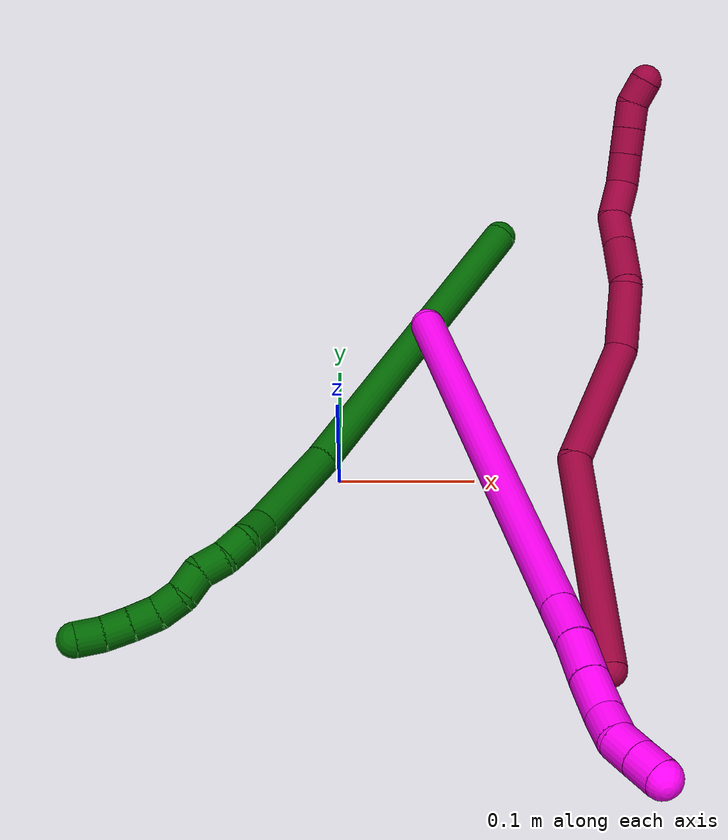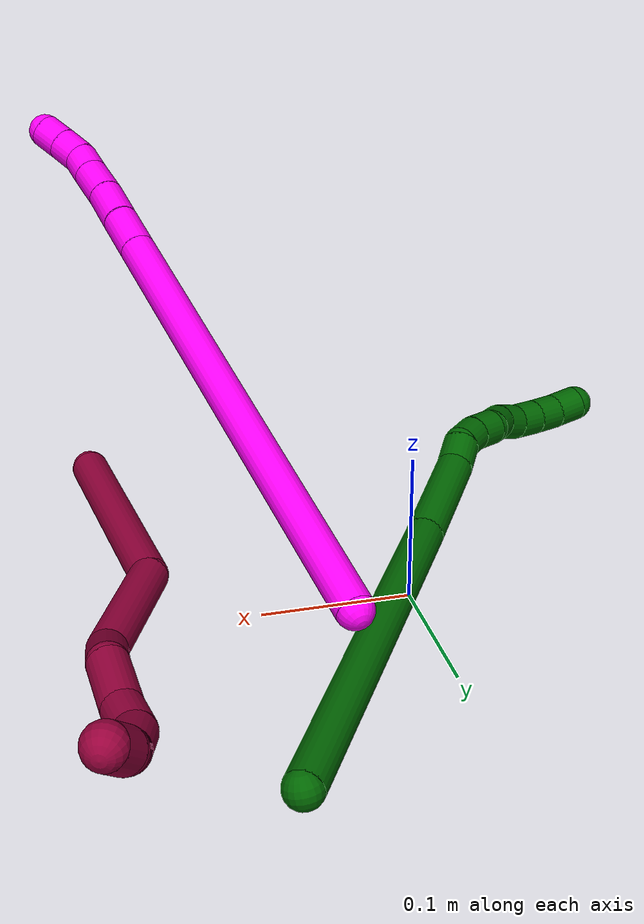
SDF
<sdf version="1.7">
 <world name="default">
  <model name="photoneo_s_sensor">
   <static>1</static>
   <pose>0 0 2 1.57079 1.57079 3.14159</pose>
   <link name="link">
    <inertial><mass>0.1</mass></inertial>
    <sensor name="sensor" type="depth">
     <update_rate>30</update_rate>
     <camera>
      <horizontal_fov>1.22</horizontal_fov>
      <image><width>1920</width><height>1200</height><format>B8G8R8</format></image>
      <clip><near>0.1</near><far>4</far></clip>
      <depth_camera><output>points</output></depth_camera>
     </camera>
     <plugin name="camera_plugin" filename="libgazebo_ros_depth_camera.so">
      <baseline>0.2</baseline>
      <alwaysOn>1</alwaysOn>
      <updateRate>0.0</updateRate>
      <cameraName>camera_ir</cameraName>
      <imageTopicName>/camera/color/image_raw</imageTopicName>
      <cameraInfoTopicName>/camera/color/camera_info</cameraInfoTopicName>
      <depthImageTopicName>/camera/depth/image_raw</depthImageTopicName>
      <depthImageCameraInfoTopicName>/camera/depth/camera_info</depthImageCameraInfoTopicName>
      <pointCloudTopicName>/camera/depth/points</pointCloudTopicName>
      <frameName>fr_optical</frameName>
      <pointCloudCutoff>0.1</pointCloudCutoff>
      <pointCloudCutoffMax>2.0</pointCloudCutoffMax>
      <distortionK1>0</distortionK1>
      <distortionK2>0</distortionK2>
      <distortionK3>0</distortionK3>
      <distortionT1>0</distortionT1>
      <distortionT2>0</distortionT2>
      <CxPrime>0</CxPrime>
      <Cx>0</Cx>
      <Cy>0</Cy>
      <focalLength>0</focalLength>
      <hackBaseline>0</hackBaseline>
     </plugin>
    </sensor>
   </link>
  </model>
  <model name="bin">
   <static>1</static>
   <link name="bottom">
    <collision name="collision-bottom">
     <pose>0 0 -0.01 0 -0 0</pose>
     <geometry><box><size>0.8 0.6 0.02</size></box></geometry>
     <surface>
      <friction><ode><mu>100</mu><mu2>100</mu2></ode></friction>
      <contact><collide_bitmask>65535</collide_bitmask></contact>
     </surface>
    </collision>
   </link>
   <link name="west_wall">
    <collision name="collision-west_wall">
     <pose>-0.41 0 0.1 0 -0 0</pose>
     <geometry><box><size>0.02 0.6 0.2</size></box></geometry>
     <surface>
      <friction><ode><mu>100</mu><mu2>100</mu2></ode></friction>
      <contact><collide_bitmask>65535</collide_bitmask></contact>
     </surface>
    </collision>
   </link>
   <link name="east_wall">
    <collision name="collision-east_wall">
     <pose>0.41 0 0.1 0 -0 0</pose>
     <geometry><box><size>0.02 0.6 0.2</size></box></geometry>
     <surface>
      <friction><ode><mu>100</mu><mu2>100</mu2></ode></friction>
      <contact><collide_bitmask>65535</collide_bitmask></contact>
     </surface>
    </collision>
   </link>
   <link name="south_wall">
    <collision name="collision-south_wall">
     <pose>0 -0.31 0.1 0 -0 0</pose>
     <geometry><box><size>0.8 0.02 0.2</size></box></geometry>
     <surface>
      <friction><ode><mu>100</mu><mu2>100</mu2></ode></friction>
      <contact><collide_bitmask>65535</collide_bitmask></contact>
     </surface>
    </collision>
   </link>
   <link name="north_wall">
    <collision name="collision-north_wall">
     <pose>0 0.31 0.1 0 -0 0</pose>
     <geometry><box><size>0.8 0.02 0.2</size></box></geometry>
     <surface>
      <friction><ode><mu>100</mu><mu2>100</mu2></ode></friction>
      <contact><collide_bitmask>65535</collide_bitmask></contact>
     </surface>
    </collision>
   </link>
  </model>
  <model name="6">
   <static>0</static>
   <link name="6">
    <collision name="collision-cylinder-e_1_1_4">
     <pose>0.036517 -0.123294 -0.024096 1.7638 0.282886 0.342447</pose>
     <geometry><cylinder><radius>0.0125</radius><length>0.261652</length></cylinder></geometry>
     <surface>
      <friction><ode><mu>1.16</mu><mu2>1.16</mu2><slip1>0</slip1><slip2>0</slip2></ode></friction>
      <contact><ode><kp>1e+06</kp><kd>1</kd><max_vel>0</max_vel><min_depth>0.001</min_depth></ode></contact>
     </surface>
    </collision>
    <visual name="visual-cylinder-e_1_1_4">
     <pose>0.036517 -0.123294 -0.024096 1.7638 0.282886 0.342447</pose>
     <geometry><cylinder><radius>0.0125</radius><length>0.261652</length></cylinder></geometry>
     <material><ambient>0 0.392157 0.003922 1</ambient></material>
    </visual>
    <collision name="collision-cylinder-e_2_4_5">
     <pose>0.085202 -0.28099 -0.059039 1.87622 0.325327 0.440383</pose>
     <geometry><cylinder><radius>0.0125</radius><length>0.076137</length></cylinder></geometry>
     <surface>
      <friction><ode><mu>1.16</mu><mu2>1.16</mu2><slip1>0</slip1><slip2>0</slip2></ode></friction>
      <contact><ode><kp>1e+06</kp><kd>1</kd><max_vel>0</max_vel><min_depth>0.001</min_depth></ode></contact>
     </surface>
    </collision>
    <visual name="visual-cylinder-e_2_4_5">
     <pose>0.085202 -0.28099 -0.059039 1.87622 0.325327 0.440383</pose>
     <geometry><cylinder><radius>0.0125</radius><length>0.076137</length></cylinder></geometry>
     <material><ambient>0 0.392157 0.003922 1</ambient></material>
    </visual>
    <collision name="collision-cylinder-e_3_5_6">
     <pose>0.100858 -0.324424 -0.075271 2.10844 0.320329 0.554178</pose>
     <geometry><cylinder><radius>0.0125</radius><length>0.022158</length></cylinder></geometry>
     <surface>
      <friction><ode><mu>1.16</mu><mu2>1.16</mu2><slip1>0</slip1><slip2>0</slip2></ode></friction>
      <contact><ode><kp>1e+06</kp><kd>1</kd><max_vel>0</max_vel><min_depth>0.001</min_depth></ode></contact>
     </surface>
    </collision>
    <visual name="visual-cylinder-e_3_5_6">
     <pose>0.100858 -0.324424 -0.075271 2.10844 0.320329 0.554178</pose>
     <geometry><cylinder><radius>0.0125</radius><length>0.022158</length></cylinder></geometry>
     <material><ambient>0 0.392157 0.003922 1</ambient></material>
    </visual>
    <collision name="collision-cylinder-e_4_6_7">
     <pose>0.108944 -0.342338 -0.081279 1.64082 0.476595 0.509762</pose>
     <geometry><cylinder><radius>0.0125</radius><length>0.020041</length></cylinder></geometry>
     <surface>
      <friction><ode><mu>1.16</mu><mu2>1.16</mu2><slip1>0</slip1><slip2>0</slip2></ode></friction>
      <contact><ode><kp>1e+06</kp><kd>1</kd><max_vel>0</max_vel><min_depth>0.001</min_depth></ode></contact>
     </surface>
    </collision>
    <visual name="visual-cylinder-e_4_6_7">
     <pose>0.108944 -0.342338 -0.081279 1.64082 0.476595 0.509762</pose>
     <geometry><cylinder><radius>0.0125</radius><length>0.020041</length></cylinder></geometry>
     <material><ambient>0 0.392157 0.003922 1</ambient></material>
    </visual>
    <collision name="collision-cylinder-e_5_7_8">
     <pose>0.120019 -0.358804 -0.08116 1.47326 0.704614 0.643673</pose>
     <geometry><cylinder><radius>0.0125</radius><length>0.020004</length></cylinder></geometry>
     <surface>
      <friction><ode><mu>1.16</mu><mu2>1.16</mu2><slip1>0</slip1><slip2>0</slip2></ode></friction>
      <contact><ode><kp>1e+06</kp><kd>1</kd><max_vel>0</max_vel><min_depth>0.001</min_depth></ode></contact>
     </surface>
    </collision>
    <visual name="visual-cylinder-e_5_7_8">
     <pose>0.120019 -0.358804 -0.08116 1.47326 0.704614 0.643673</pose>
     <geometry><cylinder><radius>0.0125</radius><length>0.020004</length></cylinder></geometry>
     <material><ambient>0 0.392157 0.003922 1</ambient></material>
    </visual>
    <collision name="collision-cylinder-e_6_8_9">
     <pose>0.129218 -0.375948 -0.079304 1.45487 0.275452 0.245559</pose>
     <geometry><cylinder><radius>0.0125</radius><length>0.020003</length></cylinder></geometry>
     <surface>
      <friction><ode><mu>1.16</mu><mu2>1.16</mu2><slip1>0</slip1><slip2>0</slip2></ode></friction>
      <contact><ode><kp>1e+06</kp><kd>1</kd><max_vel>0</max_vel><min_depth>0.001</min_depth></ode></contact>
     </surface>
    </collision>
    <visual name="visual-cylinder-e_6_8_9">
     <pose>0.129218 -0.375948 -0.079304 1.45487 0.275452 0.245559</pose>
     <geometry><cylinder><radius>0.0125</radius><length>0.020003</length></cylinder></geometry>
     <material><ambient>0 0.392157 0.003922 1</ambient></material>
    </visual>
    <collision name="collision-cylinder-e_7_9_10">
     <pose>0.137609 -0.393163 -0.07515 1.19259 0.602894 0.415951</pose>
     <geometry><cylinder><radius>0.0125</radius><length>0.020001</length></cylinder></geometry>
     <surface>
      <friction><ode><mu>1.16</mu><mu2>1.16</mu2><slip1>0</slip1><slip2>0</slip2></ode></friction>
      <contact><ode><kp>1e+06</kp><kd>1</kd><max_vel>0</max_vel><min_depth>0.001</min_depth></ode></contact>
     </surface>
    </collision>
    <visual name="visual-cylinder-e_7_9_10">
     <pose>0.137609 -0.393163 -0.07515 1.19259 0.602894 0.415951</pose>
     <geometry><cylinder><radius>0.0125</radius><length>0.020001</length></cylinder></geometry>
     <material><ambient>0 0.392157 0.003922 1</ambient></material>
    </visual>
    <collision name="collision-cylinder-e_8_10_11">
     <pose>0.150633 -0.407489 -0.070906 1.39252 0.826062 0.702298</pose>
     <geometry><cylinder><radius>0.0125</radius><length>0.020002</length></cylinder></geometry>
     <surface>
      <friction><ode><mu>1.16</mu><mu2>1.16</mu2><slip1>0</slip1><slip2>0</slip2></ode></friction>
      <contact><ode><kp>1e+06</kp><kd>1</kd><max_vel>0</max_vel><min_depth>0.001</min_depth></ode></contact>
     </surface>
    </collision>
    <visual name="visual-cylinder-e_8_10_11">
     <pose>0.150633 -0.407489 -0.070906 1.39252 0.826062 0.702298</pose>
     <geometry><cylinder><radius>0.0125</radius><length>0.020002</length></cylinder></geometry>
     <material><ambient>0 0.392157 0.003922 1</ambient></material>
    </visual>
    <collision name="collision-cylinder-e_9_11_12">
     <pose>0.165705 -0.420474 -0.068957 1.45311 0.881735 0.79413</pose>
     <geometry><cylinder><radius>0.0125</radius><length>0.020001</length></cylinder></geometry>
     <surface>
      <friction><ode><mu>1.16</mu><mu2>1.16</mu2><slip1>0</slip1><slip2>0</slip2></ode></friction>
      <contact><ode><kp>1e+06</kp><kd>1</kd><max_vel>0</max_vel><min_depth>0.001</min_depth></ode></contact>
     </surface>
    </collision>
    <visual name="visual-cylinder-e_9_11_12">
     <pose>0.165705 -0.420474 -0.068957 1.45311 0.881735 0.79413</pose>
     <geometry><cylinder><radius>0.0125</radius><length>0.020001</length></cylinder></geometry>
     <material><ambient>0 0.392157 0.003922 1</ambient></material>
    </visual>
    <collision name="collision-cylinder-e_10_12_2">
     <pose>0.18186 -0.432144 -0.068598 1.64294 1.00402 1.06608</pose>
     <geometry><cylinder><radius>0.0125</radius><length>0.020001</length></cylinder></geometry>
     <surface>
      <friction><ode><mu>1.16</mu><mu2>1.16</mu2><slip1>0</slip1><slip2>0</slip2></ode></friction>
      <contact><ode><kp>1e+06</kp><kd>1</kd><max_vel>0</max_vel><min_depth>0.001</min_depth></ode></contact>
     </surface>
    </collision>
    <visual name="visual-cylinder-e_10_12_2">
     <pose>0.18186 -0.432144 -0.068598 1.64294 1.00402 1.06608</pose>
     <geometry><cylinder><radius>0.0125</radius><length>0.020001</length></cylinder></geometry>
     <material><ambient>0 0.392157 0.003922 1</ambient></material>
    </visual>
    <collision name="collision-sphere-2">
     <pose>0.190297 -0.4375 -0.068985 0 -0 0</pose>
     <geometry><sphere><radius>0.0125</radius></sphere></geometry>
     <surface>
      <friction><ode><mu>1.16</mu><mu2>1.16</mu2><slip1>0</slip1><slip2>0</slip2></ode></friction>
      <contact><ode><kp>1e+06</kp><kd>1</kd><max_vel>0</max_vel><min_depth>0.001</min_depth></ode></contact>
     </surface>
    </collision>
    <visual name="visual-sphere-2">
     <pose>0.190297 -0.4375 -0.068985 0 -0 0</pose>
     <geometry><sphere><radius>0.0125</radius></sphere></geometry>
     <material><ambient>0 0.392157 0.003922 1</ambient></material>
    </visual>
    <collision name="collision-sphere-12">
     <pose>0.173424 -0.426789 -0.068211 0 -0 0</pose>
     <geometry><sphere><radius>0.0125</radius></sphere></geometry>
     <surface>
      <friction><ode><mu>1.16</mu><mu2>1.16</mu2><slip1>0</slip1><slip2>0</slip2></ode></friction>
      <contact><ode><kp>1e+06</kp><kd>1</kd><max_vel>0</max_vel><min_depth>0.001</min_depth></ode></contact>
     </surface>
    </collision>
    <visual name="visual-sphere-12">
     <pose>0.173424 -0.426789 -0.068211 0 -0 0</pose>
     <geometry><sphere><radius>0.0125</radius></sphere></geometry>
     <material><ambient>0 0.392157 0.003922 1</ambient></material>
    </visual>
    <collision name="collision-sphere-11">
     <pose>0.157986 -0.41416 -0.069704 0 -0 0</pose>
     <geometry><sphere><radius>0.0125</radius></sphere></geometry>
     <surface>
      <friction><ode><mu>1.16</mu><mu2>1.16</mu2><slip1>0</slip1><slip2>0</slip2></ode></friction>
      <contact><ode><kp>1e+06</kp><kd>1</kd><max_vel>0</max_vel><min_depth>0.001</min_depth></ode></contact>
     </surface>
    </collision>
    <visual name="visual-sphere-11">
     <pose>0.157986 -0.41416 -0.069704 0 -0 0</pose>
     <geometry><sphere><radius>0.0125</radius></sphere></geometry>
     <material><ambient>0 0.392157 0.003922 1</ambient></material>
    </visual>
    <collision name="collision-sphere-10">
     <pose>0.143279 -0.400818 -0.072108 0 -0 0</pose>
     <geometry><sphere><radius>0.0125</radius></sphere></geometry>
     <surface>
      <friction><ode><mu>1.16</mu><mu2>1.16</mu2><slip1>0</slip1><slip2>0</slip2></ode></friction>
      <contact><ode><kp>1e+06</kp><kd>1</kd><max_vel>0</max_vel><min_depth>0.001</min_depth></ode></contact>
     </surface>
    </collision>
    <visual name="visual-sphere-10">
     <pose>0.143279 -0.400818 -0.072108 0 -0 0</pose>
     <geometry><sphere><radius>0.0125</radius></sphere></geometry>
     <material><ambient>0 0.392157 0.003922 1</ambient></material>
    </visual>
    <collision name="collision-sphere-9">
     <pose>0.131939 -0.385508 -0.078191 0 -0 0</pose>
     <geometry><sphere><radius>0.0125</radius></sphere></geometry>
     <surface>
      <friction><ode><mu>1.16</mu><mu2>1.16</mu2><slip1>0</slip1><slip2>0</slip2></ode></friction>
      <contact><ode><kp>1e+06</kp><kd>1</kd><max_vel>0</max_vel><min_depth>0.001</min_depth></ode></contact>
     </surface>
    </collision>
    <visual name="visual-sphere-9">
     <pose>0.131939 -0.385508 -0.078191 0 -0 0</pose>
     <geometry><sphere><radius>0.0125</radius></sphere></geometry>
     <material><ambient>0 0.392157 0.003922 1</ambient></material>
    </visual>
    <collision name="collision-sphere-4">
     <pose>0.073035 -0.246588 -0.048192 0 -0 0</pose>
     <geometry><sphere><radius>0.0125</radius></sphere></geometry>
     <surface>
      <friction><ode><mu>1.16</mu><mu2>1.16</mu2><slip1>0</slip1><slip2>0</slip2></ode></friction>
      <contact><ode><kp>1e+06</kp><kd>1</kd><max_vel>0</max_vel><min_depth>0.001</min_depth></ode></contact>
     </surface>
    </collision>
    <visual name="visual-sphere-4">
     <pose>0.073035 -0.246588 -0.048192 0 -0 0</pose>
     <geometry><sphere><radius>0.0125</radius></sphere></geometry>
     <material><ambient>0 0.392157 0.003922 1</ambient></material>
    </visual>
    <collision name="collision-sphere-1">
     <geometry><sphere><radius>0.0125</radius></sphere></geometry>
     <surface>
      <friction><ode><mu>1.16</mu><mu2>1.16</mu2><slip1>0</slip1><slip2>0</slip2></ode></friction>
      <contact><ode><kp>1e+06</kp><kd>1</kd><max_vel>0</max_vel><min_depth>0.001</min_depth></ode></contact>
     </surface>
    </collision>
    <visual name="visual-sphere-1">
     <geometry><sphere><radius>0.0125</radius></sphere></geometry>
     <material><ambient>0 0.392157 0.003922 1</ambient></material>
    </visual>
    <collision name="collision-sphere-8">
     <pose>0.126498 -0.366388 -0.080418 0 -0 0</pose>
     <geometry><sphere><radius>0.0125</radius></sphere></geometry>
     <surface>
      <friction><ode><mu>1.16</mu><mu2>1.16</mu2><slip1>0</slip1><slip2>0</slip2></ode></friction>
      <contact><ode><kp>1e+06</kp><kd>1</kd><max_vel>0</max_vel><min_depth>0.001</min_depth></ode></contact>
     </surface>
    </collision>
    <visual name="visual-sphere-8">
     <pose>0.126498 -0.366388 -0.080418 0 -0 0</pose>
     <geometry><sphere><radius>0.0125</radius></sphere></geometry>
     <material><ambient>0 0.392157 0.003922 1</ambient></material>
    </visual>
    <collision name="collision-sphere-5">
     <pose>0.09737 -0.315392 -0.069885 0 -0 0</pose>
     <geometry><sphere><radius>0.0125</radius></sphere></geometry>
     <surface>
      <friction><ode><mu>1.16</mu><mu2>1.16</mu2><slip1>0</slip1><slip2>0</slip2></ode></friction>
      <contact><ode><kp>1e+06</kp><kd>1</kd><max_vel>0</max_vel><min_depth>0.001</min_depth></ode></contact>
     </surface>
    </collision>
    <visual name="visual-sphere-5">
     <pose>0.09737 -0.315392 -0.069885 0 -0 0</pose>
     <geometry><sphere><radius>0.0125</radius></sphere></geometry>
     <material><ambient>0 0.392157 0.003922 1</ambient></material>
    </visual>
    <collision name="collision-sphere-6">
     <pose>0.104347 -0.333456 -0.080656 0 -0 0</pose>
     <geometry><sphere><radius>0.0125</radius></sphere></geometry>
     <surface>
      <friction><ode><mu>1.16</mu><mu2>1.16</mu2><slip1>0</slip1><slip2>0</slip2></ode></friction>
      <contact><ode><kp>1e+06</kp><kd>1</kd><max_vel>0</max_vel><min_depth>0.001</min_depth></ode></contact>
     </surface>
    </collision>
    <visual name="visual-sphere-6">
     <pose>0.104347 -0.333456 -0.080656 0 -0 0</pose>
     <geometry><sphere><radius>0.0125</radius></sphere></geometry>
     <material><ambient>0 0.392157 0.003922 1</ambient></material>
    </visual>
    <collision name="collision-sphere-7">
     <pose>0.113541 -0.35122 -0.081902 0 -0 0</pose>
     <geometry><sphere><radius>0.0125</radius></sphere></geometry>
     <surface>
      <friction><ode><mu>1.16</mu><mu2>1.16</mu2><slip1>0</slip1><slip2>0</slip2></ode></friction>
      <contact><ode><kp>1e+06</kp><kd>1</kd><max_vel>0</max_vel><min_depth>0.001</min_depth></ode></contact>
     </surface>
    </collision>
    <visual name="visual-sphere-7">
     <pose>0.113541 -0.35122 -0.081902 0 -0 0</pose>
     <geometry><sphere><radius>0.0125</radius></sphere></geometry>
     <material><ambient>0 0.392157 0.003922 1</ambient></material>
    </visual>
    <inertial>
     <pose>0.076325 -0.230936 -0.045958 0 -0 0</pose>
     <mass>0.5</mass>
     <inertia>
      <ixx>0.001922</ixx>
      <ixy>0</ixy>
      <ixz>0</ixz>
      <iyy>0.000337</iyy>
      <iyz>0</iyz>
      <izz>0.001017</izz>
     </inertia>
    </inertial>
   </link>
   <pose>0.125695 0.214224 0.024928 2.95313 -0.203157 2.86117</pose>
  </model>
  <model name="8">
   <static>0</static>
   <link name="8">
    <collision name="collision-cylinder-e_1_1_4">
     <pose>-0.009068 0.036738 0.075959 -0.450486 -0.107059 0.024553</pose>
     <geometry><cylinder><radius>0.0125</radius><length>0.169725</length></cylinder></geometry>
     <surface>
      <friction><ode><mu>1.16</mu><mu2>1.16</mu2><slip1>0</slip1><slip2>0</slip2></ode></friction>
      <contact><ode><kp>1e+06</kp><kd>1</kd><max_vel>0</max_vel><min_depth>0.001</min_depth></ode></contact>
     </surface>
    </collision>
    <visual name="visual-cylinder-e_1_1_4">
     <pose>-0.009068 0.036738 0.075959 -0.450486 -0.107059 0.024553</pose>
     <geometry><cylinder><radius>0.0125</radius><length>0.169725</length></cylinder></geometry>
     <material><ambient>0.584314 0 0.227451 1</ambient></material>
    </visual>
    <collision name="collision-cylinder-e_2_4_5">
     <pose>-0.021338 0.071279 0.202289 0.043571 -0.063435 -0.001383</pose>
     <geometry><cylinder><radius>0.0125</radius><length>0.101042</length></cylinder></geometry>
     <surface>
      <friction><ode><mu>1.16</mu><mu2>1.16</mu2><slip1>0</slip1><slip2>0</slip2></ode></friction>
      <contact><ode><kp>1e+06</kp><kd>1</kd><max_vel>0</max_vel><min_depth>0.001</min_depth></ode></contact>
     </surface>
    </collision>
    <visual name="visual-cylinder-e_2_4_5">
     <pose>-0.021338 0.071279 0.202289 0.043571 -0.063435 -0.001383</pose>
     <geometry><cylinder><radius>0.0125</radius><length>0.101042</length></cylinder></geometry>
     <material><ambient>0.584314 0 0.227451 1</ambient></material>
    </visual>
    <collision name="collision-cylinder-e_3_5_6">
     <pose>-0.035425 0.072905 0.274917 -0.170056 -0.449112 0.038931</pose>
     <geometry><cylinder><radius>0.0125</radius><length>0.050136</length></cylinder></geometry>
     <surface>
      <friction><ode><mu>1.16</mu><mu2>1.16</mu2><slip1>0</slip1><slip2>0</slip2></ode></friction>
      <contact><ode><kp>1e+06</kp><kd>1</kd><max_vel>0</max_vel><min_depth>0.001</min_depth></ode></contact>
     </surface>
    </collision>
    <visual name="visual-cylinder-e_3_5_6">
     <pose>-0.035425 0.072905 0.274917 -0.170056 -0.449112 0.038931</pose>
     <geometry><cylinder><radius>0.0125</radius><length>0.050136</length></cylinder></geometry>
     <material><ambient>0.584314 0 0.227451 1</ambient></material>
    </visual>
    <collision name="collision-cylinder-e_4_6_7">
     <pose>-0.046146 0.085178 0.315476 -0.432605 0.00807 -0.001773</pose>
     <geometry><cylinder><radius>0.0125</radius><length>0.040321</length></cylinder></geometry>
     <surface>
      <friction><ode><mu>1.16</mu><mu2>1.16</mu2><slip1>0</slip1><slip2>0</slip2></ode></friction>
      <contact><ode><kp>1e+06</kp><kd>1</kd><max_vel>0</max_vel><min_depth>0.001</min_depth></ode></contact>
     </surface>
    </collision>
    <visual name="visual-cylinder-e_4_6_7">
     <pose>-0.046146 0.085178 0.315476 -0.432605 0.00807 -0.001773</pose>
     <geometry><cylinder><radius>0.0125</radius><length>0.040321</length></cylinder></geometry>
     <material><ambient>0.584314 0 0.227451 1</ambient></material>
    </visual>
    <collision name="collision-cylinder-e_5_7_8">
     <pose>-0.048472 0.099347 0.345661 -0.448441 -0.18654 0.042659</pose>
     <geometry><cylinder><radius>0.0125</radius><length>0.026837</length></cylinder></geometry>
     <surface>
      <friction><ode><mu>1.16</mu><mu2>1.16</mu2><slip1>0</slip1><slip2>0</slip2></ode></friction>
      <contact><ode><kp>1e+06</kp><kd>1</kd><max_vel>0</max_vel><min_depth>0.001</min_depth></ode></contact>
     </surface>
    </collision>
    <visual name="visual-cylinder-e_5_7_8">
     <pose>-0.048472 0.099347 0.345661 -0.448441 -0.18654 0.042659</pose>
     <geometry><cylinder><radius>0.0125</radius><length>0.026837</length></cylinder></geometry>
     <material><ambient>0.584314 0 0.227451 1</ambient></material>
    </visual>
    <collision name="collision-cylinder-e_6_8_9">
     <pose>-0.055066 0.1056 0.371219 -0.039175 -0.291441 0.00575</pose>
     <geometry><cylinder><radius>0.0125</radius><length>0.028579</length></cylinder></geometry>
     <surface>
      <friction><ode><mu>1.16</mu><mu2>1.16</mu2><slip1>0</slip1><slip2>0</slip2></ode></friction>
      <contact><ode><kp>1e+06</kp><kd>1</kd><max_vel>0</max_vel><min_depth>0.001</min_depth></ode></contact>
     </surface>
    </collision>
    <visual name="visual-cylinder-e_6_8_9">
     <pose>-0.055066 0.1056 0.371219 -0.039175 -0.291441 0.00575</pose>
     <geometry><cylinder><radius>0.0125</radius><length>0.028579</length></cylinder></geometry>
     <material><ambient>0.584314 0 0.227451 1</ambient></material>
    </visual>
    <collision name="collision-cylinder-e_7_9_10">
     <pose>-0.066137 0.106801 0.394214 -0.071224 -0.64063 0.023637</pose>
     <geometry><cylinder><radius>0.0125</radius><length>0.023305</length></cylinder></geometry>
     <surface>
      <friction><ode><mu>1.16</mu><mu2>1.16</mu2><slip1>0</slip1><slip2>0</slip2></ode></friction>
      <contact><ode><kp>1e+06</kp><kd>1</kd><max_vel>0</max_vel><min_depth>0.001</min_depth></ode></contact>
     </surface>
    </collision>
    <visual name="visual-cylinder-e_7_9_10">
     <pose>-0.066137 0.106801 0.394214 -0.071224 -0.64063 0.023637</pose>
     <geometry><cylinder><radius>0.0125</radius><length>0.023305</length></cylinder></geometry>
     <material><ambient>0.584314 0 0.227451 1</ambient></material>
    </visual>
    <collision name="collision-cylinder-e_8_10_11">
     <pose>-0.079179 0.10791 0.411491 -0.055758 -0.651412 0.018836</pose>
     <geometry><cylinder><radius>0.0125</radius><length>0.020047</length></cylinder></geometry>
     <surface>
      <friction><ode><mu>1.16</mu><mu2>1.16</mu2><slip1>0</slip1><slip2>0</slip2></ode></friction>
      <contact><ode><kp>1e+06</kp><kd>1</kd><max_vel>0</max_vel><min_depth>0.001</min_depth></ode></contact>
     </surface>
    </collision>
    <visual name="visual-cylinder-e_8_10_11">
     <pose>-0.079179 0.10791 0.411491 -0.055758 -0.651412 0.018836</pose>
     <geometry><cylinder><radius>0.0125</radius><length>0.020047</length></cylinder></geometry>
     <material><ambient>0.584314 0 0.227451 1</ambient></material>
    </visual>
    <collision name="collision-cylinder-e_9_11_12">
     <pose>-0.091272 0.108795 0.42743 -0.055269 -0.645224 0.01848</pose>
     <geometry><cylinder><radius>0.0125</radius><length>0.020007</length></cylinder></geometry>
     <surface>
      <friction><ode><mu>1.16</mu><mu2>1.16</mu2><slip1>0</slip1><slip2>0</slip2></ode></friction>
      <contact><ode><kp>1e+06</kp><kd>1</kd><max_vel>0</max_vel><min_depth>0.001</min_depth></ode></contact>
     </surface>
    </collision>
    <visual name="visual-cylinder-e_9_11_12">
     <pose>-0.091272 0.108795 0.42743 -0.055269 -0.645224 0.01848</pose>
     <geometry><cylinder><radius>0.0125</radius><length>0.020007</length></cylinder></geometry>
     <material><ambient>0.584314 0 0.227451 1</ambient></material>
    </visual>
    <collision name="collision-cylinder-e_10_12_2">
     <pose>-0.102876 0.105723 0.442923 0.437512 -0.592909 -0.135606</pose>
     <geometry><cylinder><radius>0.0125</radius><length>0.020001</length></cylinder></geometry>
     <surface>
      <friction><ode><mu>1.16</mu><mu2>1.16</mu2><slip1>0</slip1><slip2>0</slip2></ode></friction>
      <contact><ode><kp>1e+06</kp><kd>1</kd><max_vel>0</max_vel><min_depth>0.001</min_depth></ode></contact>
     </surface>
    </collision>
    <visual name="visual-cylinder-e_10_12_2">
     <pose>-0.102876 0.105723 0.442923 0.437512 -0.592909 -0.135606</pose>
     <geometry><cylinder><radius>0.0125</radius><length>0.020001</length></cylinder></geometry>
     <material><ambient>0.584314 0 0.227451 1</ambient></material>
    </visual>
    <collision name="collision-sphere-2">
     <pose>-0.108464 0.102209 0.450435 0 -0 0</pose>
     <geometry><sphere><radius>0.0125</radius></sphere></geometry>
     <surface>
      <friction><ode><mu>1.16</mu><mu2>1.16</mu2><slip1>0</slip1><slip2>0</slip2></ode></friction>
      <contact><ode><kp>1e+06</kp><kd>1</kd><max_vel>0</max_vel><min_depth>0.001</min_depth></ode></contact>
     </surface>
    </collision>
    <visual name="visual-sphere-2">
     <pose>-0.108464 0.102209 0.450435 0 -0 0</pose>
     <geometry><sphere><radius>0.0125</radius></sphere></geometry>
     <material><ambient>0.584314 0 0.227451 1</ambient></material>
    </visual>
    <collision name="collision-sphere-12">
     <pose>-0.097288 0.109237 0.43541 0 -0 0</pose>
     <geometry><sphere><radius>0.0125</radius></sphere></geometry>
     <surface>
      <friction><ode><mu>1.16</mu><mu2>1.16</mu2><slip1>0</slip1><slip2>0</slip2></ode></friction>
      <contact><ode><kp>1e+06</kp><kd>1</kd><max_vel>0</max_vel><min_depth>0.001</min_depth></ode></contact>
     </surface>
    </collision>
    <visual name="visual-sphere-12">
     <pose>-0.097288 0.109237 0.43541 0 -0 0</pose>
     <geometry><sphere><radius>0.0125</radius></sphere></geometry>
     <material><ambient>0.584314 0 0.227451 1</ambient></material>
    </visual>
    <collision name="collision-sphere-11">
     <pose>-0.085256 0.108354 0.41945 0 -0 0</pose>
     <geometry><sphere><radius>0.0125</radius></sphere></geometry>
     <surface>
      <friction><ode><mu>1.16</mu><mu2>1.16</mu2><slip1>0</slip1><slip2>0</slip2></ode></friction>
      <contact><ode><kp>1e+06</kp><kd>1</kd><max_vel>0</max_vel><min_depth>0.001</min_depth></ode></contact>
     </surface>
    </collision>
    <visual name="visual-sphere-11">
     <pose>-0.085256 0.108354 0.41945 0 -0 0</pose>
     <geometry><sphere><radius>0.0125</radius></sphere></geometry>
     <material><ambient>0.584314 0 0.227451 1</ambient></material>
    </visual>
    <collision name="collision-sphere-10">
     <pose>-0.073102 0.107466 0.403533 0 -0 0</pose>
     <geometry><sphere><radius>0.0125</radius></sphere></geometry>
     <surface>
      <friction><ode><mu>1.16</mu><mu2>1.16</mu2><slip1>0</slip1><slip2>0</slip2></ode></friction>
      <contact><ode><kp>1e+06</kp><kd>1</kd><max_vel>0</max_vel><min_depth>0.001</min_depth></ode></contact>
     </surface>
    </collision>
    <visual name="visual-sphere-10">
     <pose>-0.073102 0.107466 0.403533 0 -0 0</pose>
     <geometry><sphere><radius>0.0125</radius></sphere></geometry>
     <material><ambient>0.584314 0 0.227451 1</ambient></material>
    </visual>
    <collision name="collision-sphere-9">
     <pose>-0.059172 0.106136 0.384896 0 -0 0</pose>
     <geometry><sphere><radius>0.0125</radius></sphere></geometry>
     <surface>
      <friction><ode><mu>1.16</mu><mu2>1.16</mu2><slip1>0</slip1><slip2>0</slip2></ode></friction>
      <contact><ode><kp>1e+06</kp><kd>1</kd><max_vel>0</max_vel><min_depth>0.001</min_depth></ode></contact>
     </surface>
    </collision>
    <visual name="visual-sphere-9">
     <pose>-0.059172 0.106136 0.384896 0 -0 0</pose>
     <geometry><sphere><radius>0.0125</radius></sphere></geometry>
     <material><ambient>0.584314 0 0.227451 1</ambient></material>
    </visual>
    <collision name="collision-sphere-4">
     <pose>-0.018136 0.073475 0.151917 0 -0 0</pose>
     <geometry><sphere><radius>0.0125</radius></sphere></geometry>
     <surface>
      <friction><ode><mu>1.16</mu><mu2>1.16</mu2><slip1>0</slip1><slip2>0</slip2></ode></friction>
      <contact><ode><kp>1e+06</kp><kd>1</kd><max_vel>0</max_vel><min_depth>0.001</min_depth></ode></contact>
     </surface>
    </collision>
    <visual name="visual-sphere-4">
     <pose>-0.018136 0.073475 0.151917 0 -0 0</pose>
     <geometry><sphere><radius>0.0125</radius></sphere></geometry>
     <material><ambient>0.584314 0 0.227451 1</ambient></material>
    </visual>
    <collision name="collision-sphere-1">
     <geometry><sphere><radius>0.0125</radius></sphere></geometry>
     <surface>
      <friction><ode><mu>1.16</mu><mu2>1.16</mu2><slip1>0</slip1><slip2>0</slip2></ode></friction>
      <contact><ode><kp>1e+06</kp><kd>1</kd><max_vel>0</max_vel><min_depth>0.001</min_depth></ode></contact>
     </surface>
    </collision>
    <visual name="visual-sphere-1">
     <geometry><sphere><radius>0.0125</radius></sphere></geometry>
     <material><ambient>0.584314 0 0.227451 1</ambient></material>
    </visual>
    <collision name="collision-sphere-8">
     <pose>-0.05096 0.105064 0.357543 0 -0 0</pose>
     <geometry><sphere><radius>0.0125</radius></sphere></geometry>
     <surface>
      <friction><ode><mu>1.16</mu><mu2>1.16</mu2><slip1>0</slip1><slip2>0</slip2></ode></friction>
      <contact><ode><kp>1e+06</kp><kd>1</kd><max_vel>0</max_vel><min_depth>0.001</min_depth></ode></contact>
     </surface>
    </collision>
    <visual name="visual-sphere-8">
     <pose>-0.05096 0.105064 0.357543 0 -0 0</pose>
     <geometry><sphere><radius>0.0125</radius></sphere></geometry>
     <material><ambient>0.584314 0 0.227451 1</ambient></material>
    </visual>
    <collision name="collision-sphere-5">
     <pose>-0.024541 0.069083 0.252661 0 -0 0</pose>
     <geometry><sphere><radius>0.0125</radius></sphere></geometry>
     <surface>
      <friction><ode><mu>1.16</mu><mu2>1.16</mu2><slip1>0</slip1><slip2>0</slip2></ode></friction>
      <contact><ode><kp>1e+06</kp><kd>1</kd><max_vel>0</max_vel><min_depth>0.001</min_depth></ode></contact>
     </surface>
    </collision>
    <visual name="visual-sphere-5">
     <pose>-0.024541 0.069083 0.252661 0 -0 0</pose>
     <geometry><sphere><radius>0.0125</radius></sphere></geometry>
     <material><ambient>0.584314 0 0.227451 1</ambient></material>
    </visual>
    <collision name="collision-sphere-6">
     <pose>-0.046308 0.076727 0.297173 0 -0 0</pose>
     <geometry><sphere><radius>0.0125</radius></sphere></geometry>
     <surface>
      <friction><ode><mu>1.16</mu><mu2>1.16</mu2><slip1>0</slip1><slip2>0</slip2></ode></friction>
      <contact><ode><kp>1e+06</kp><kd>1</kd><max_vel>0</max_vel><min_depth>0.001</min_depth></ode></contact>
     </surface>
    </collision>
    <visual name="visual-sphere-6">
     <pose>-0.046308 0.076727 0.297173 0 -0 0</pose>
     <geometry><sphere><radius>0.0125</radius></sphere></geometry>
     <material><ambient>0.584314 0 0.227451 1</ambient></material>
    </visual>
    <collision name="collision-sphere-7">
     <pose>-0.045983 0.09363 0.333779 0 -0 0</pose>
     <geometry><sphere><radius>0.0125</radius></sphere></geometry>
     <surface>
      <friction><ode><mu>1.16</mu><mu2>1.16</mu2><slip1>0</slip1><slip2>0</slip2></ode></friction>
      <contact><ode><kp>1e+06</kp><kd>1</kd><max_vel>0</max_vel><min_depth>0.001</min_depth></ode></contact>
     </surface>
    </collision>
    <visual name="visual-sphere-7">
     <pose>-0.045983 0.09363 0.333779 0 -0 0</pose>
     <geometry><sphere><radius>0.0125</radius></sphere></geometry>
     <material><ambient>0.584314 0 0.227451 1</ambient></material>
    </visual>
    <inertial>
     <pose>-0.034437 0.07031 0.229136 0 -0 0</pose>
     <mass>0.5</mass>
     <inertia>
      <ixx>0.000532</ixx>
      <ixy>0</ixy>
      <ixz>0</ixz>
      <iyy>0.000512</iyy>
      <iyz>0</iyz>
      <izz>-8.6e-05</izz>
     </inertia>
    </inertial>
   </link>
   <pose>0.186061 -0.174131 0.032181 -1.49587 1.36356 -0.302093</pose>
  </model>
  <model name="10">
   <static>0</static>
   <link name="10">
    <collision name="collision-cylinder-e_1_1_4">
     <pose>0.008632 -0.004819 0.171402 0.028107 0.050297 0.000707</pose>
     <geometry><cylinder><radius>0.0125</radius><length>0.343373</length></cylinder></geometry>
     <surface>
      <friction><ode><mu>1.16</mu><mu2>1.16</mu2><slip1>0</slip1><slip2>0</slip2></ode></friction>
      <contact><ode><kp>1e+06</kp><kd>1</kd><max_vel>0</max_vel><min_depth>0.001</min_depth></ode></contact>
     </surface>
    </collision>
    <visual name="visual-cylinder-e_1_1_4">
     <pose>0.008632 -0.004819 0.171402 0.028107 0.050297 0.000707</pose>
     <geometry><cylinder><radius>0.0125</radius><length>0.343373</length></cylinder></geometry>
     <material><ambient>1 0 0.964706 1</ambient></material>
    </visual>
    <collision name="collision-cylinder-e_2_4_5">
     <pose>0.018083 -0.01006 0.359485 0.025281 0.04907 0.00062</pose>
     <geometry><cylinder><radius>0.0125</radius><length>0.033414</length></cylinder></geometry>
     <surface>
      <friction><ode><mu>1.16</mu><mu2>1.16</mu2><slip1>0</slip1><slip2>0</slip2></ode></friction>
      <contact><ode><kp>1e+06</kp><kd>1</kd><max_vel>0</max_vel><min_depth>0.001</min_depth></ode></contact>
     </surface>
    </collision>
    <visual name="visual-cylinder-e_2_4_5">
     <pose>0.018083 -0.01006 0.359485 0.025281 0.04907 0.00062</pose>
     <geometry><cylinder><radius>0.0125</radius><length>0.033414</length></cylinder></geometry>
     <material><ambient>1 0 0.964706 1</ambient></material>
    </visual>
    <collision name="collision-cylinder-e_3_5_6">
     <pose>0.018985 -0.011852 0.392353 0.084497 0.005101 0.000216</pose>
     <geometry><cylinder><radius>0.0125</radius><length>0.032489</length></cylinder></geometry>
     <surface>
      <friction><ode><mu>1.16</mu><mu2>1.16</mu2><slip1>0</slip1><slip2>0</slip2></ode></friction>
      <contact><ode><kp>1e+06</kp><kd>1</kd><max_vel>0</max_vel><min_depth>0.001</min_depth></ode></contact>
     </surface>
    </collision>
    <visual name="visual-cylinder-e_3_5_6">
     <pose>0.018985 -0.011852 0.392353 0.084497 0.005101 0.000216</pose>
     <geometry><cylinder><radius>0.0125</radius><length>0.032489</length></cylinder></geometry>
     <material><ambient>1 0 0.964706 1</ambient></material>
    </visual>
    <collision name="collision-cylinder-e_4_6_7">
     <pose>0.019786 -0.014918 0.42339 0.113616 0.048003 0.00273</pose>
     <geometry><cylinder><radius>0.0125</radius><length>0.02993</length></cylinder></geometry>
     <surface>
      <friction><ode><mu>1.16</mu><mu2>1.16</mu2><slip1>0</slip1><slip2>0</slip2></ode></friction>
      <contact><ode><kp>1e+06</kp><kd>1</kd><max_vel>0</max_vel><min_depth>0.001</min_depth></ode></contact>
     </surface>
    </collision>
    <visual name="visual-cylinder-e_4_6_7">
     <pose>0.019786 -0.014918 0.42339 0.113616 0.048003 0.00273</pose>
     <geometry><cylinder><radius>0.0125</radius><length>0.02993</length></cylinder></geometry>
     <material><ambient>1 0 0.964706 1</ambient></material>
    </visual>
    <collision name="collision-cylinder-e_5_7_8">
     <pose>0.021312 -0.016845 0.448535 0.022593 0.078296 0.000885</pose>
     <geometry><cylinder><radius>0.0125</radius><length>0.020657</length></cylinder></geometry>
     <surface>
      <friction><ode><mu>1.16</mu><mu2>1.16</mu2><slip1>0</slip1><slip2>0</slip2></ode></friction>
      <contact><ode><kp>1e+06</kp><kd>1</kd><max_vel>0</max_vel><min_depth>0.001</min_depth></ode></contact>
     </surface>
    </collision>
    <visual name="visual-cylinder-e_5_7_8">
     <pose>0.021312 -0.016845 0.448535 0.022593 0.078296 0.000885</pose>
     <geometry><cylinder><radius>0.0125</radius><length>0.020657</length></cylinder></geometry>
     <material><ambient>1 0 0.964706 1</ambient></material>
    </visual>
    <collision name="collision-cylinder-e_6_8_9">
     <pose>0.026087 -0.01728 0.468077 0.021898 0.405147 0.004498</pose>
     <geometry><cylinder><radius>0.0125</radius><length>0.020129</length></cylinder></geometry>
     <surface>
      <friction><ode><mu>1.16</mu><mu2>1.16</mu2><slip1>0</slip1><slip2>0</slip2></ode></friction>
      <contact><ode><kp>1e+06</kp><kd>1</kd><max_vel>0</max_vel><min_depth>0.001</min_depth></ode></contact>
     </surface>
    </collision>
    <visual name="visual-cylinder-e_6_8_9">
     <pose>0.026087 -0.01728 0.468077 0.021898 0.405147 0.004498</pose>
     <geometry><cylinder><radius>0.0125</radius><length>0.020129</length></cylinder></geometry>
     <material><ambient>1 0 0.964706 1</ambient></material>
    </visual>
    <collision name="collision-cylinder-e_7_9_2">
     <pose>0.034146 -0.017766 0.486449 0.031059 0.421427 0.006644</pose>
     <geometry><cylinder><radius>0.0125</radius><length>0.020009</length></cylinder></geometry>
     <surface>
      <friction><ode><mu>1.16</mu><mu2>1.16</mu2><slip1>0</slip1><slip2>0</slip2></ode></friction>
      <contact><ode><kp>1e+06</kp><kd>1</kd><max_vel>0</max_vel><min_depth>0.001</min_depth></ode></contact>
     </surface>
    </collision>
    <visual name="visual-cylinder-e_7_9_2">
     <pose>0.034146 -0.017766 0.486449 0.031059 0.421427 0.006644</pose>
     <geometry><cylinder><radius>0.0125</radius><length>0.020009</length></cylinder></geometry>
     <material><ambient>1 0 0.964706 1</ambient></material>
    </visual>
    <collision name="collision-sphere-2">
     <pose>0.038239 -0.01805 0.495574 0 -0 0</pose>
     <geometry><sphere><radius>0.0125</radius></sphere></geometry>
     <surface>
      <friction><ode><mu>1.16</mu><mu2>1.16</mu2><slip1>0</slip1><slip2>0</slip2></ode></friction>
      <contact><ode><kp>1e+06</kp><kd>1</kd><max_vel>0</max_vel><min_depth>0.001</min_depth></ode></contact>
     </surface>
    </collision>
    <visual name="visual-sphere-2">
     <pose>0.038239 -0.01805 0.495574 0 -0 0</pose>
     <geometry><sphere><radius>0.0125</radius></sphere></geometry>
     <material><ambient>1 0 0.964706 1</ambient></material>
    </visual>
    <collision name="collision-sphere-9">
     <pose>0.030054 -0.017483 0.477325 0 -0 0</pose>
     <geometry><sphere><radius>0.0125</radius></sphere></geometry>
     <surface>
      <friction><ode><mu>1.16</mu><mu2>1.16</mu2><slip1>0</slip1><slip2>0</slip2></ode></friction>
      <contact><ode><kp>1e+06</kp><kd>1</kd><max_vel>0</max_vel><min_depth>0.001</min_depth></ode></contact>
     </surface>
    </collision>
    <visual name="visual-sphere-9">
     <pose>0.030054 -0.017483 0.477325 0 -0 0</pose>
     <geometry><sphere><radius>0.0125</radius></sphere></geometry>
     <material><ambient>1 0 0.964706 1</ambient></material>
    </visual>
    <collision name="collision-sphere-4">
     <pose>0.017264 -0.009638 0.342804 0 -0 0</pose>
     <geometry><sphere><radius>0.0125</radius></sphere></geometry>
     <surface>
      <friction><ode><mu>1.16</mu><mu2>1.16</mu2><slip1>0</slip1><slip2>0</slip2></ode></friction>
      <contact><ode><kp>1e+06</kp><kd>1</kd><max_vel>0</max_vel><min_depth>0.001</min_depth></ode></contact>
     </surface>
    </collision>
    <visual name="visual-sphere-4">
     <pose>0.017264 -0.009638 0.342804 0 -0 0</pose>
     <geometry><sphere><radius>0.0125</radius></sphere></geometry>
     <material><ambient>1 0 0.964706 1</ambient></material>
    </visual>
    <collision name="collision-sphere-1">
     <geometry><sphere><radius>0.0125</radius></sphere></geometry>
     <surface>
      <friction><ode><mu>1.16</mu><mu2>1.16</mu2><slip1>0</slip1><slip2>0</slip2></ode></friction>
      <contact><ode><kp>1e+06</kp><kd>1</kd><max_vel>0</max_vel><min_depth>0.001</min_depth></ode></contact>
     </surface>
    </collision>
    <visual name="visual-sphere-1">
     <geometry><sphere><radius>0.0125</radius></sphere></geometry>
     <material><ambient>1 0 0.964706 1</ambient></material>
    </visual>
    <collision name="collision-sphere-8">
     <pose>0.02212 -0.017078 0.45883 0 -0 0</pose>
     <geometry><sphere><radius>0.0125</radius></sphere></geometry>
     <surface>
      <friction><ode><mu>1.16</mu><mu2>1.16</mu2><slip1>0</slip1><slip2>0</slip2></ode></friction>
      <contact><ode><kp>1e+06</kp><kd>1</kd><max_vel>0</max_vel><min_depth>0.001</min_depth></ode></contact>
     </surface>
    </collision>
    <visual name="visual-sphere-8">
     <pose>0.02212 -0.017078 0.45883 0 -0 0</pose>
     <geometry><sphere><radius>0.0125</radius></sphere></geometry>
     <material><ambient>1 0 0.964706 1</ambient></material>
    </visual>
    <collision name="collision-sphere-5">
     <pose>0.018903 -0.010481 0.376167 0 -0 0</pose>
     <geometry><sphere><radius>0.0125</radius></sphere></geometry>
     <surface>
      <friction><ode><mu>1.16</mu><mu2>1.16</mu2><slip1>0</slip1><slip2>0</slip2></ode></friction>
      <contact><ode><kp>1e+06</kp><kd>1</kd><max_vel>0</max_vel><min_depth>0.001</min_depth></ode></contact>
     </surface>
    </collision>
    <visual name="visual-sphere-5">
     <pose>0.018903 -0.010481 0.376167 0 -0 0</pose>
     <geometry><sphere><radius>0.0125</radius></sphere></geometry>
     <material><ambient>1 0 0.964706 1</ambient></material>
    </visual>
    <collision name="collision-sphere-6">
     <pose>0.019068 -0.013223 0.408539 0 -0 0</pose>
     <geometry><sphere><radius>0.0125</radius></sphere></geometry>
     <surface>
      <friction><ode><mu>1.16</mu><mu2>1.16</mu2><slip1>0</slip1><slip2>0</slip2></ode></friction>
      <contact><ode><kp>1e+06</kp><kd>1</kd><max_vel>0</max_vel><min_depth>0.001</min_depth></ode></contact>
     </surface>
    </collision>
    <visual name="visual-sphere-6">
     <pose>0.019068 -0.013223 0.408539 0 -0 0</pose>
     <geometry><sphere><radius>0.0125</radius></sphere></geometry>
     <material><ambient>1 0 0.964706 1</ambient></material>
    </visual>
    <collision name="collision-sphere-7">
     <pose>0.020504 -0.016613 0.438241 0 -0 0</pose>
     <geometry><sphere><radius>0.0125</radius></sphere></geometry>
     <surface>
      <friction><ode><mu>1.16</mu><mu2>1.16</mu2><slip1>0</slip1><slip2>0</slip2></ode></friction>
      <contact><ode><kp>1e+06</kp><kd>1</kd><max_vel>0</max_vel><min_depth>0.001</min_depth></ode></contact>
     </surface>
    </collision>
    <visual name="visual-sphere-7">
     <pose>0.020504 -0.016613 0.438241 0 -0 0</pose>
     <geometry><sphere><radius>0.0125</radius></sphere></geometry>
     <material><ambient>1 0 0.964706 1</ambient></material>
    </visual>
    <inertial>
     <pose>0.012851 -0.007747 0.249412 0 -0 0</pose>
     <mass>0.5</mass>
     <inertia>
      <ixx>0.003404</ixx>
      <ixy>0</ixy>
      <ixz>0</ixz>
      <iyy>0.003403</iyy>
      <iyz>0</iyz>
      <izz>-3.7e-05</izz>
     </inertia>
    </inertial>
   </link>
   <pose>0.066155 0.101016 0.058912 1.17818 -0.061071 0.200517</pose>
  </model>
 </world>
</sdf>
